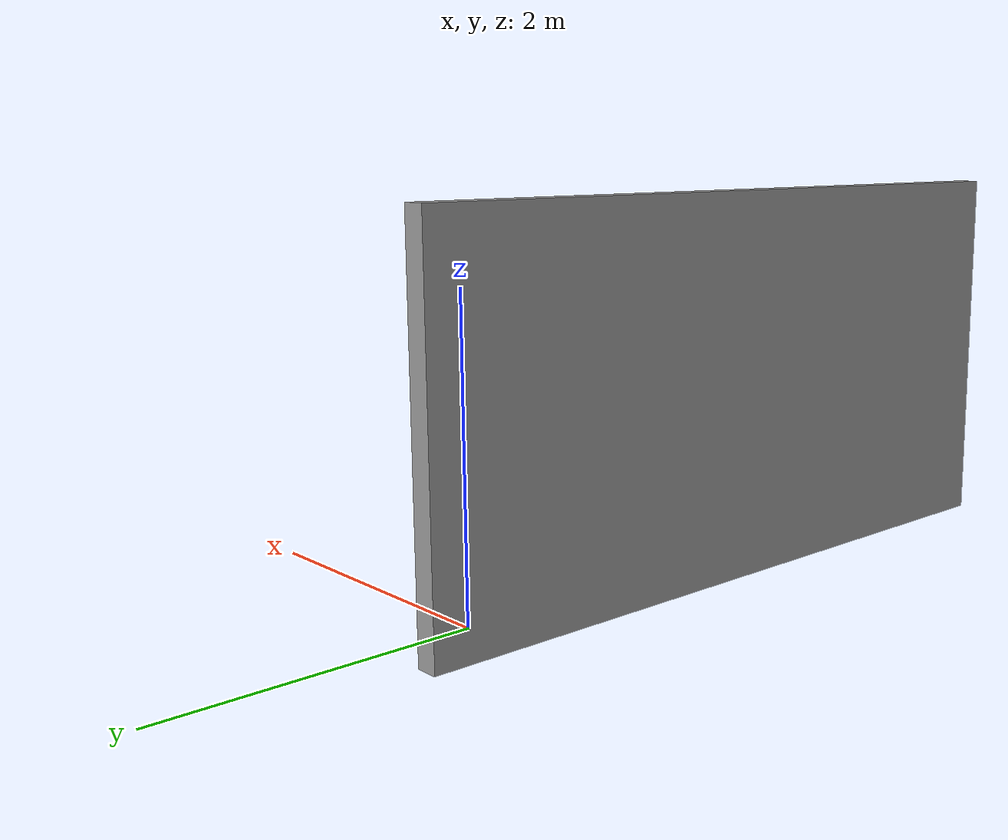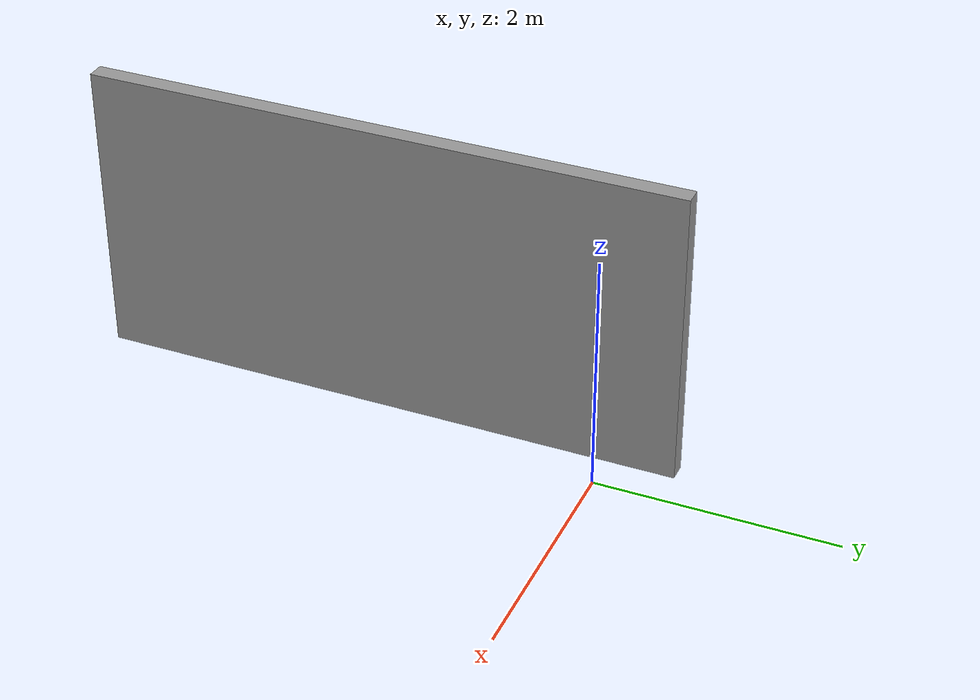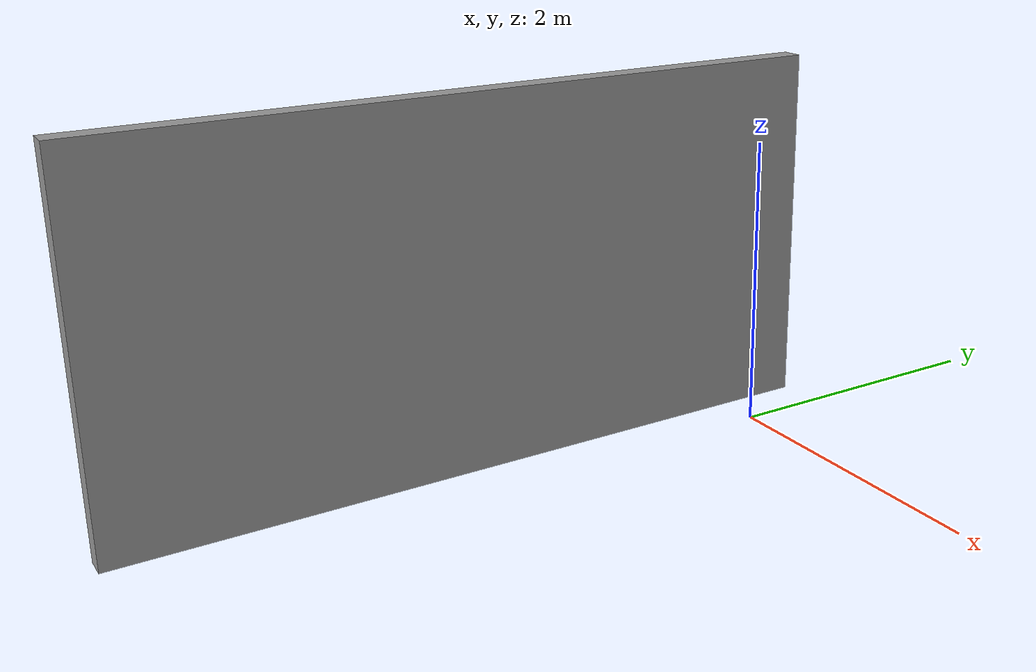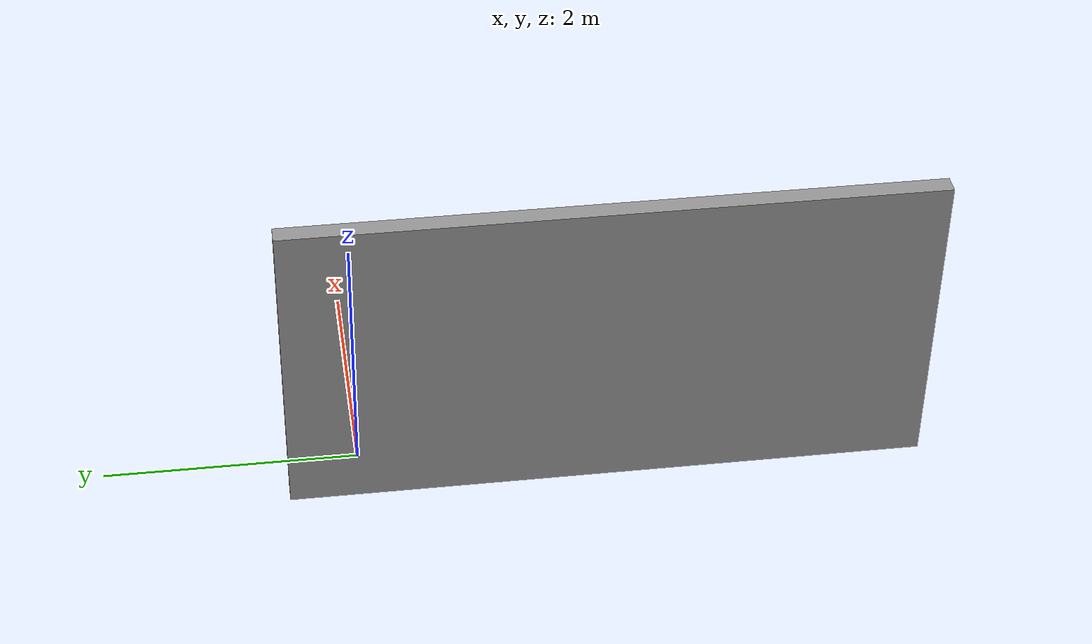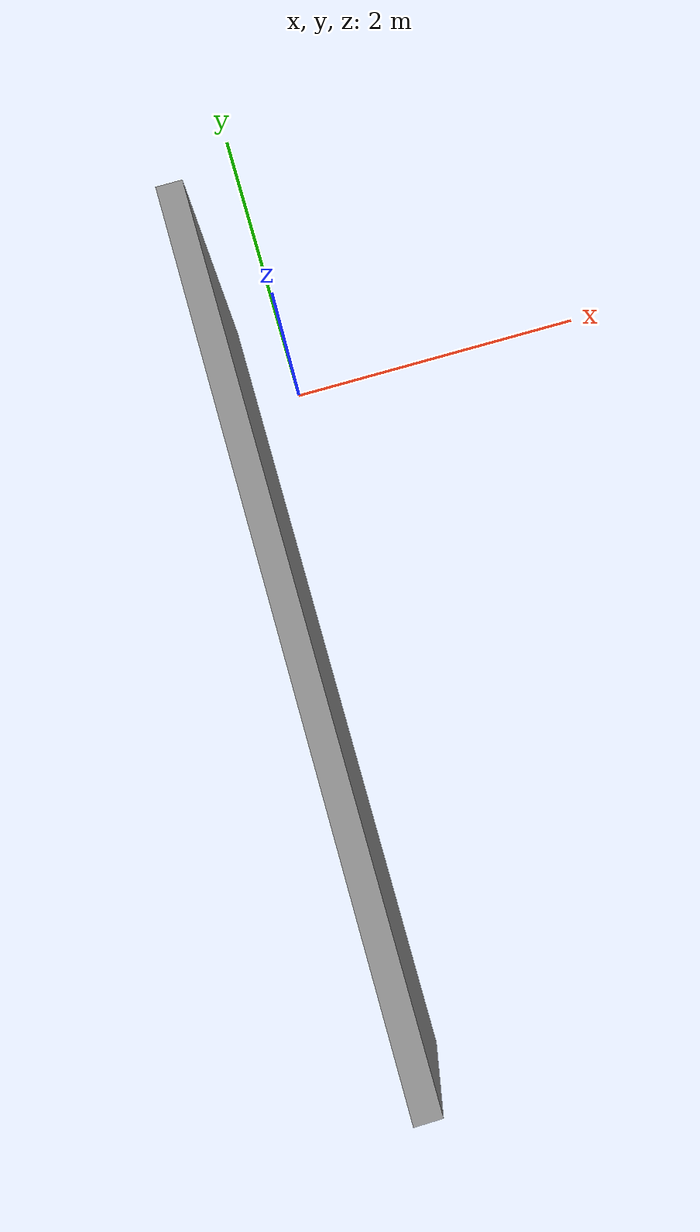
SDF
<?xml version='1.0'?>
<sdf version='1.7'>
  <model name='wall_single_5m'>
    <pose>0 0 0 0 -0 0</pose>
    <link name='Wall_0'>
      <collision name='Wall_0_Collision'>
        <geometry>
          <box>
            <size>5 0.15 2.5</size>
          </box>
        </geometry>
        <pose>0 0 1.25 0 -0 0</pose>
      </collision>
      <visual name='Wall_0_Visual'>
        <pose>0 0 1.25 0 -0 0</pose>
        <geometry>
          <box>
            <size>5 0.15 2.5</size>
          </box>
        </geometry>
        <material>
          <script>
            <uri>file://media/materials/scripts/gazebo.material</uri>
            <name>Gazebo/Grey</name>
          </script>
          <ambient>1 1 1 1</ambient>
        </material>
        <meta>
          <layer>0</layer>
        </meta>
      </visual>
      <pose>-0.3775 -1.9375 0 0 -0 -1.5708</pose>
    </link>
    <static>1</static>
  </model>
</sdf>
